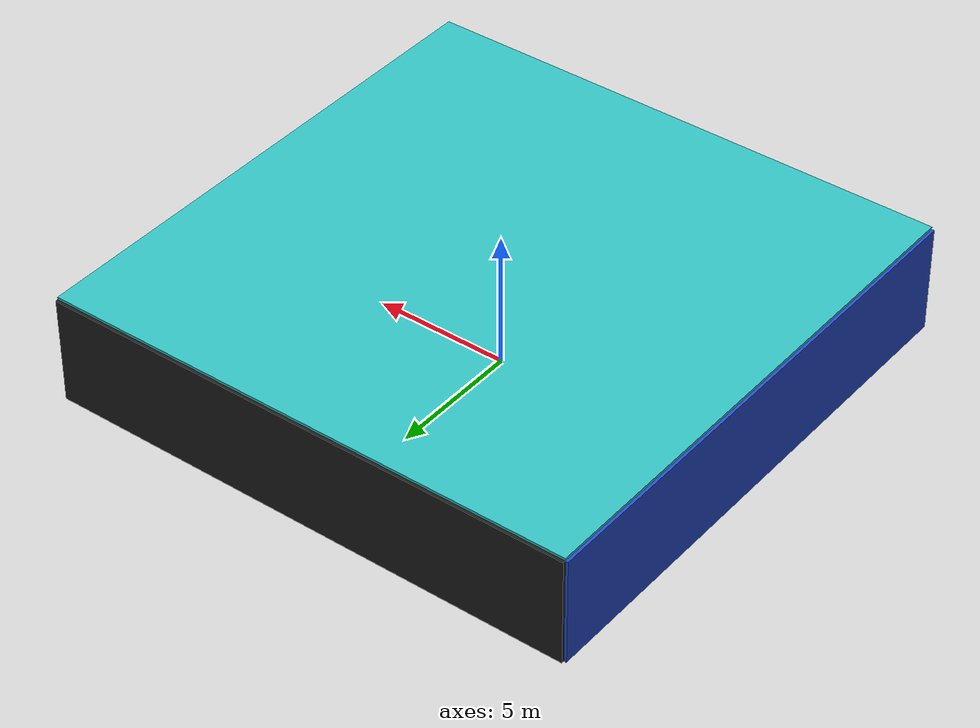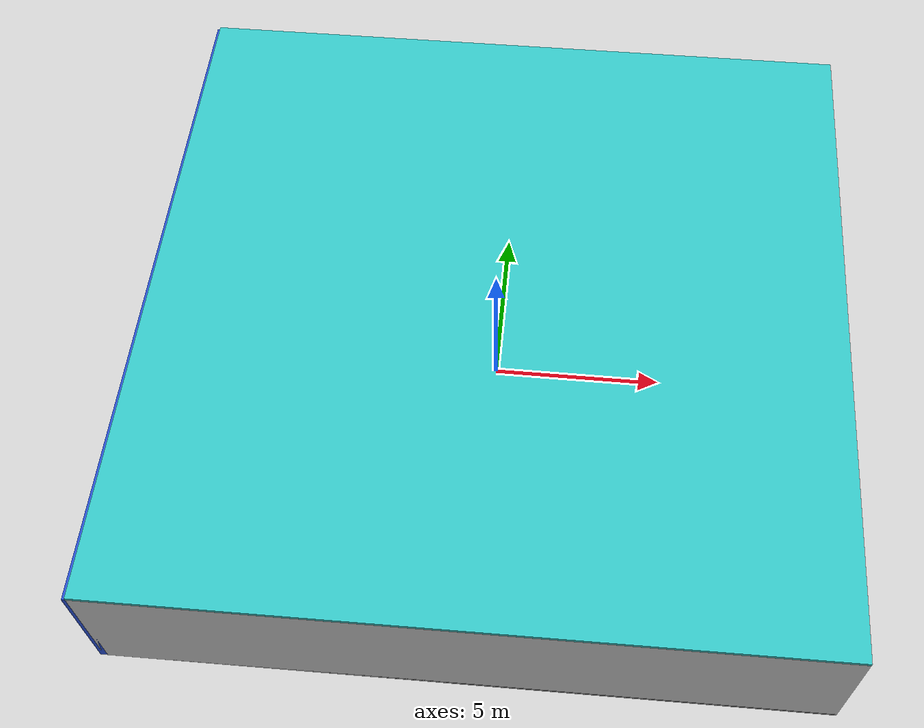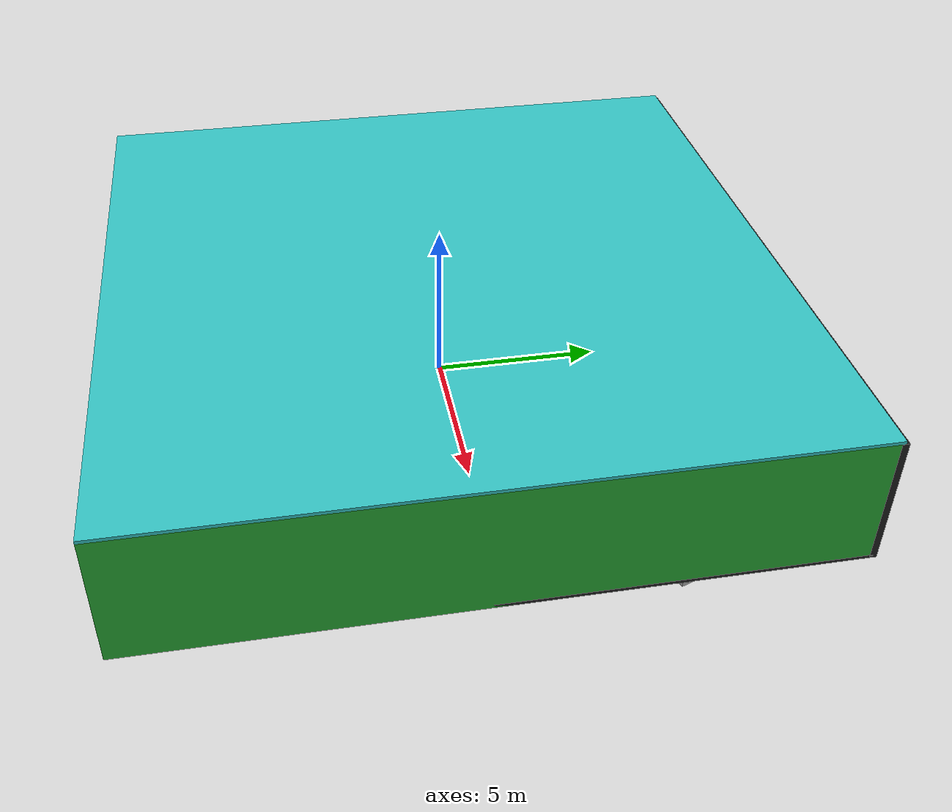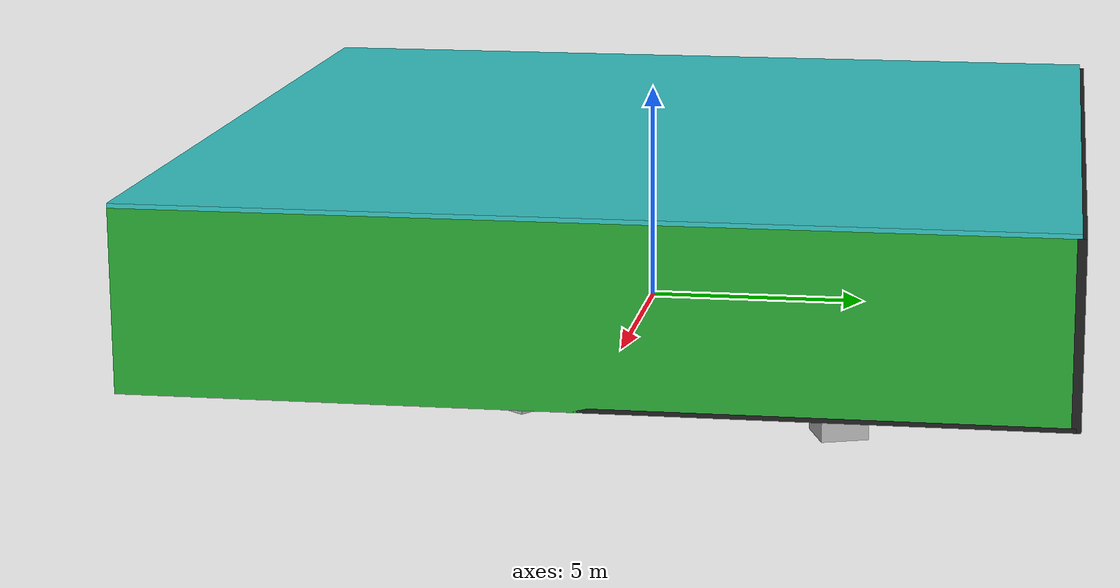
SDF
<sdf version="1.4">
 <world name="default">
  <physics type="ode">
   <max_step_size>0.001</max_step_size>
   <real_time_factor>1</real_time_factor>
   <real_time_update_rate>1000</real_time_update_rate>
   <gravity>0 0 -9.8</gravity>
  </physics>
  <scene><ambient>0.4 0.4 0.4 1</ambient><background>0.7 0.7 0.7 1</background><shadows>1</shadows></scene>
  <model name="Surrounding">
   <static>1</static>
   <link name="Ceiling">
    <collision name="Ceiling_Collision"><geometry><box><size>20 20 0.1</size></box></geometry></collision>
    <visual name="Ceiling_Visual">
     <geometry><box><size>20 20 0.1</size></box></geometry>
     <material>
      <script><uri>file://media/materials/scripts/gazebo.material</uri><name>Gazebo/TurquoiseGlow</name></script>
     </material>
    </visual>
    <pose>0 0 4.05 0 0 0</pose>
   </link>
   <link name="Wall_South">
    <collision name="Wall_South_Collision">
     <geometry><box><size>20 0 4</size></box></geometry>
     <pose>0 0 2 0 -0 0</pose>
    </collision>
    <visual name="Wall_South_Visual">
     <pose>0 0 2 0 -0 0</pose>
     <geometry><box><size>20 0 4</size></box></geometry>
     <material>
      <script><uri>file://media/materials/scripts/gazebo.material</uri><name>Gazebo/Pioneer2Body</name></script>
     </material>
    </visual>
    <velocity_decay><linear>0</linear><angular>0</angular></velocity_decay>
    <pose>0 -10 0 0 -0 0</pose>
   </link>
   <link name="Wall_East">
    <collision name="Wall_21_Collision">
     <geometry><box><size>20 0 4</size></box></geometry>
     <pose>0 0 2 0 -0 0</pose>
    </collision>
    <visual name="Wall_21_Visual">
     <pose>0 0 2 0 -0 0</pose>
     <geometry><box><size>20 0 4</size></box></geometry>
     <material>
      <script><uri>file://media/materials/scripts/gazebo.material</uri><name>Gazebo/GreenGlow</name></script>
     </material>
    </visual>
    <velocity_decay><linear>0</linear><angular>0</angular></velocity_decay>
    <pose>10 0 0 0 -0 1.5708</pose>
   </link>
   <link name="Wall_North">
    <collision name="Wall_22_Collision">
     <geometry><box><size>20 0.2 4</size></box></geometry>
     <pose>0 0 2 0 -0 0</pose>
    </collision>
    <visual name="Wall_22_Visual">
     <pose>0 0 2 0 -0 0</pose>
     <geometry><box><size>20 0.2 4</size></box></geometry>
     <material>
      <script><uri>file://media/materials/scripts/gazebo.material</uri><name>Gazebo/FlatBlack</name></script>
     </material>
    </visual>
    <velocity_decay><linear>0</linear><angular>0</angular></velocity_decay>
    <pose>0 10 0 0 -0 0</pose>
   </link>
   <link name="Wall_West">
    <collision name="Wall_23_Collision">
     <geometry><box><size>20 0.2 4</size></box></geometry>
     <pose>0 0 2 0 -0 0</pose>
    </collision>
    <visual name="Wall_23_Visual">
     <pose>0 0 2 0 -0 0</pose>
     <geometry><box><size>20 0.2 4</size></box></geometry>
     <material>
      <script><uri>file://media/materials/scripts/gazebo.material</uri><name>Gazebo/Blue</name></script>
     </material>
    </visual>
    <velocity_decay><linear>0</linear><angular>0</angular></velocity_decay>
    <pose>-10 0 0 0 0 -1.5708</pose>
   </link>
   <link name="Ground_link">
    <collision name="collision">
     <pose>0 0 .05 0 -0 0</pose>
     <geometry><box><size>20 20 0.1</size></box></geometry>
    </collision>
    <visual name="visual">
     <pose>0 0 .05 0 -0 0</pose>
     <geometry><box><size>20 20 0.1</size></box></geometry>
     <material>
      <script><uri>file://media/materials/scripts/gazebo.material</uri><name>Gazebo/Black</name></script>
     </material>
    </visual>
   </link>
   <static>1</static>
  </model>
  <spherical_coordinates>
   <surface_model>EARTH_WGS84</surface_model>
   <latitude_deg>0</latitude_deg>
   <longitude_deg>0</longitude_deg>
   <elevation>0</elevation>
   <heading_deg>0</heading_deg>
  </spherical_coordinates>
  <light name="lightball_0" type="diffuse">
   <diffuse>0.8 0.8 0.8 1</diffuse>
   <specular>0.2 0.2 0.2 1</specular>
   <attenuation>
    <range>100</range>
    <constant>0.7</constant>
    <linear>0.01</linear>
    <quadratic>0.001</quadratic>
   </attenuation>
   <direction>-0.5 0.1 -0.9</direction>
   <pose>-9.27826388219 -2.30661412476 1.85860357772 0 0 0</pose>
  </light>
  <light name="lightball_1" type="diffuse">
   <diffuse>0.8 0.8 0.8 1</diffuse>
   <specular>0.2 0.2 0.2 1</specular>
   <attenuation>
    <range>100</range>
    <constant>0.7</constant>
    <linear>0.01</linear>
    <quadratic>0.001</quadratic>
   </attenuation>
   <direction>-0.5 0.1 -0.9</direction>
   <pose>8.27498249483 -7.28293985545 1.74819613998 0 0 0</pose>
  </light>
  <light name="lightball_2" type="diffuse">
   <diffuse>0.8 0.8 0.8 1</diffuse>
   <specular>0.2 0.2 0.2 1</specular>
   <attenuation>
    <range>100</range>
    <constant>0.7</constant>
    <linear>0.01</linear>
    <quadratic>0.001</quadratic>
   </attenuation>
   <direction>-0.5 0.1 -0.9</direction>
   <pose>8.41893608103 7.58911993123 0.667571439905 0 0 0</pose>
  </light>
  <light name="lightball_3" type="diffuse">
   <diffuse>0.8 0.8 0.8 1</diffuse>
   <specular>0.2 0.2 0.2 1</specular>
   <attenuation>
    <range>100</range>
    <constant>0.7</constant>
    <linear>0.01</linear>
    <quadratic>0.001</quadratic>
   </attenuation>
   <direction>-0.5 0.1 -0.9</direction>
   <pose>5.83991778918 7.86914324487 1.5054154459 0 0 0</pose>
  </light>
  <light name="lightball_4" type="diffuse">
   <diffuse>0.8 0.8 0.8 1</diffuse>
   <specular>0.2 0.2 0.2 1</specular>
   <attenuation>
    <range>100</range>
    <constant>0.7</constant>
    <linear>0.01</linear>
    <quadratic>0.001</quadratic>
   </attenuation>
   <direction>-0.5 0.1 -0.9</direction>
   <pose>0.223206178356 5.08393975409 1.78788424872 0 0 0</pose>
  </light>
  <light name="lightball_5" type="diffuse">
   <diffuse>0.8 0.8 0.8 1</diffuse>
   <specular>0.2 0.2 0.2 1</specular>
   <attenuation>
    <range>100</range>
    <constant>0.7</constant>
    <linear>0.01</linear>
    <quadratic>0.001</quadratic>
   </attenuation>
   <direction>-0.5 0.1 -0.9</direction>
   <pose>-0.152687954597 -8.5784789445 3.79752606394 0 0 0</pose>
  </light>
  <light name="lightball_6" type="diffuse">
   <diffuse>0.8 0.8 0.8 1</diffuse>
   <specular>0.2 0.2 0.2 1</specular>
   <attenuation>
    <range>100</range>
    <constant>0.7</constant>
    <linear>0.01</linear>
    <quadratic>0.001</quadratic>
   </attenuation>
   <direction>-0.5 0.1 -0.9</direction>
   <pose>-9.24066200256 6.34152659951 1.32503849117 0 0 0</pose>
  </light>
  <light name="lightball_7" type="diffuse">
   <diffuse>0.8 0.8 0.8 1</diffuse>
   <specular>0.2 0.2 0.2 1</specular>
   <attenuation>
    <range>100</range>
    <constant>0.7</constant>
    <linear>0.01</linear>
    <quadratic>0.001</quadratic>
   </attenuation>
   <direction>-0.5 0.1 -0.9</direction>
   <pose>9.37138399437 4.89317932819 1.24491255836 0 0 0</pose>
  </light>
  <light name="lightball_8" type="diffuse">
   <diffuse>0.8 0.8 0.8 1</diffuse>
   <specular>0.2 0.2 0.2 1</specular>
   <attenuation>
    <range>100</range>
    <constant>0.7</constant>
    <linear>0.01</linear>
    <quadratic>0.001</quadratic>
   </attenuation>
   <direction>-0.5 0.1 -0.9</direction>
   <pose>8.28042322094 2.07772786888 2.6097554945 0 0 0</pose>
  </light>
  <light name="lightball_9" type="diffuse">
   <diffuse>0.8 0.8 0.8 1</diffuse>
   <specular>0.2 0.2 0.2 1</specular>
   <attenuation>
    <range>100</range>
    <constant>0.7</constant>
    <linear>0.01</linear>
    <quadratic>0.001</quadratic>
   </attenuation>
   <direction>-0.5 0.1 -0.9</direction>
   <pose>4.46948691681 3.2204732872 0.998776725291 0 0 0</pose>
  </light>
  <light name="lightball_10" type="diffuse">
   <diffuse>0.8 0.8 0.8 1</diffuse>
   <specular>0.2 0.2 0.2 1</specular>
   <attenuation>
    <range>100</range>
    <constant>0.7</constant>
    <linear>0.01</linear>
    <quadratic>0.001</quadratic>
   </attenuation>
   <direction>-0.5 0.1 -0.9</direction>
   <pose>-4.87014872126 7.45902591383 1.0083244077 0 0 0</pose>
  </light>
  <light name="lightball_11" type="diffuse">
   <diffuse>0.8 0.8 0.8 1</diffuse>
   <specular>0.2 0.2 0.2 1</specular>
   <attenuation>
    <range>100</range>
    <constant>0.7</constant>
    <linear>0.01</linear>
    <quadratic>0.001</quadratic>
   </attenuation>
   <direction>-0.5 0.1 -0.9</direction>
   <pose>2.26163864035 1.55116608943 1.17301802133 0 0 0</pose>
  </light>
  <light name="lightball_12" type="diffuse">
   <diffuse>0.8 0.8 0.8 1</diffuse>
   <specular>0.2 0.2 0.2 1</specular>
   <attenuation>
    <range>100</range>
    <constant>0.7</constant>
    <linear>0.01</linear>
    <quadratic>0.001</quadratic>
   </attenuation>
   <direction>-0.5 0.1 -0.9</direction>
   <pose>8.18286405774 -4.11158121801 2.28448869817 0 0 0</pose>
  </light>
  <include>
   <uri>model://construction_cone</uri>
   <pose>-6.71103663112 0.667925425826 0 0 0 0.9560381326</pose>
  </include>
  <include>
   <uri>model://robocup_3Dsim_goal</uri>
   <pose>-1.93450379294 -2.12811454924 0 0 0 1.0354324196</pose>
  </include>
  <include>
   <uri>model://robocup_3Dsim_goal</uri>
   <pose>2.5356096378 0.788995995707 0 0 0 1.99020098126</pose>
  </include>
  <include><uri>model://table</uri><pose>5.22542228778 5.65659331694 0 0 0 0.24434335525</pose></include>
  <include>
   <uri>model://textured_shapes</uri>
   <pose>6.73359008377 -0.75353013117 0 0 0 0.924343993902</pose>
  </include>
  <include>
   <uri>model://textured_shapes</uri>
   <pose>7.66298453353 4.66792367682 0 0 0 1.91156863204</pose>
  </include>
 </world>
</sdf>

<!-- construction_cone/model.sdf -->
<sdf version="1.5">
  <model name="Construction Cone">
    <link name="link">
      <collision name="collision">
        <geometry>
          <mesh>
            <scale>10 10 10</scale>
            <uri>file://isr-testbed/construction_cone/meshes/construction_cone.dae</uri>
          </mesh>
        </geometry>
      </collision>
      <visual name="visual">
        <geometry>
          <mesh>
            <scale>10 10 10</scale>
            <uri>file://isr-testbed/construction_cone/meshes/construction_cone.dae</uri>
          </mesh>
        </geometry>
      </visual>
    </link>
  </model>
</sdf>

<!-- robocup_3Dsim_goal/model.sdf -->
<sdf version="1.5">
  <model name="robocup_3d_goal">
    <static>true</static>
    <link name="left_post">
      <pose>0 1.05 0.45 0 0 0</pose>
      <collision name="collision">
        <geometry>
          <cylinder>
            <radius>0.05</radius>
            <length>0.9</length>
          </cylinder>
        </geometry>
      </collision>
      <visual name="visual">
        <geometry>
          <cylinder>
            <radius>0.05</radius>
            <length>0.9</length>
          </cylinder>
        </geometry>
        <material>
          <script>
            <uri>file://media/materials/scripts/gazebo.material</uri>
            <name>Gazebo/ZincYellow</name>
          </script>
        </material>
      </visual>
    </link>
    <link name="left_support_horiz_lower">
      <pose>0.30 1.05 0.01 0 0 0</pose>
      <collision name="collision">
        <geometry>
          <box>
            <size>0.50 0.02 0.02</size>
          </box>
        </geometry>
      </collision>
      <visual name="visual">
        <geometry>
          <box>
            <size>0.50 0.02 0.02</size>
          </box>
        </geometry>
        <material>
          <script>
            <uri>file://media/materials/scripts/gazebo.material</uri>
            <name>Gazebo/White</name>
          </script>
        </material>
      </visual>
    </link>
    <link name="left_support_horiz_upper">
      <pose>0.30 1.05 0.79 0 0 0</pose>
      <collision name="collision">
        <geometry>
          <box>
            <size>0.50 0.02 0.02</size>
          </box>
        </geometry>
      </collision>
      <visual name="visual">
        <geometry>
          <box>
            <size>0.50 0.02 0.02</size>
          </box>
        </geometry>
        <material>
          <script>
            <uri>file://media/materials/scripts/gazebo.material</uri>
            <name>Gazebo/White</name>
          </script>
        </material>
      </visual>
    </link>
    <link name="left_support_vertical">
      <pose>0.56 1.05 0.4 0 1.5708 0</pose>
      <collision name="collision">
        <geometry>
          <box>
            <size>0.80 0.02 0.02</size>
          </box>
        </geometry>
      </collision>
      <visual name="visual">
        <geometry>
          <box>
            <size>0.80 0.02 0.02</size>
          </box>
        </geometry>
        <material>
          <script>
            <uri>file://media/materials/scripts/gazebo.material</uri>
            <name>Gazebo/White</name>
          </script>
        </material>
      </visual>
    </link>
    <link name="right_support_horiz_lower">
      <pose>0.30 -1.05 0.01 0 0 0</pose>
      <collision name="collision">
        <geometry>
          <box>
            <size>0.50 0.02 0.02</size>
          </box>
        </geometry>
      </collision>
      <visual name="visual">
        <geometry>
          <box>
            <size>0.50 0.02 0.02</size>
          </box>
        </geometry>
        <material>
          <script>
            <uri>file://media/materials/scripts/gazebo.material</uri>
            <name>Gazebo/White</name>
          </script>
        </material>
      </visual>
    </link>
    <link name="right_support_horiz_upper">
      <pose>0.30 -1.05 0.79 0 0 0</pose>
      <collision name="collision">
        <geometry>
          <box>
            <size>0.50 0.02 0.02</size>
          </box>
        </geometry>
      </collision>
      <visual name="visual">
        <geometry>
          <box>
            <size>0.50 0.02 0.02</size>
          </box>
        </geometry>
        <material>
          <script>
            <uri>file://media/materials/scripts/gazebo.material</uri>
            <name>Gazebo/White</name>
          </script>
        </material>
      </visual>
    </link>
    <link name="right_support_vertical">
      <pose>0.56 -1.05 0.4 0 1.5708 0</pose>
      <collision name="collision">
        <geometry>
          <box>
            <size>0.80 0.02 0.02</size>
          </box>
        </geometry>
      </collision>
      <visual name="visual">
        <geometry>
          <box>
            <size>0.80 0.02 0.02</size>
          </box>
        </geometry>
        <material>
          <script>
            <uri>file://media/materials/scripts/gazebo.material</uri>
            <name>Gazebo/White</name>
          </script>
        </material>
      </visual>
    </link>
    <link name="center_support_horiz_lower">
      <pose>0.56 0 0.01 0 1.5708 0</pose>
      <collision name="collision">
        <geometry>
          <box>
            <size>0.02 2.08 0.02</size>
          </box>
        </geometry>
      </collision>
      <visual name="visual">
        <geometry>
          <box>
            <size>0.02 2.08 0.02</size>
          </box>
        </geometry>
        <material>
          <script>
            <uri>file://media/materials/scripts/gazebo.material</uri>
            <name>Gazebo/White</name>
          </script>
        </material>
      </visual>
    </link>
    <link name="center_support_horiz_upper">
      <pose>0.56 0 0.79 0 1.5708 0</pose>
      <collision name="collision">
        <geometry>
          <box>
            <size>0.02 2.08 0.02</size>
          </box>
        </geometry>
      </collision>
      <visual name="visual">
        <geometry>
          <box>
            <size>0.02 2.08 0.02</size>
          </box>
        </geometry>
        <material>
          <script>
            <uri>file://media/materials/scripts/gazebo.material</uri>
            <name>Gazebo/White</name>
          </script>
        </material>
      </visual>
    </link>
    <link name="right_post">
      <pose>0 -1.05 0.45 0 0 0</pose>
      <collision name="collision">
        <geometry>
          <cylinder>
            <radius>0.05</radius>
            <length>0.9</length>
          </cylinder>
        </geometry>
      </collision>
      <visual name="visual">
        <geometry>
          <cylinder>
            <radius>0.05</radius>
            <length>0.9</length>
          </cylinder>
        </geometry>
        <material>
          <script>
            <uri>file://media/materials/scripts/gazebo.material</uri>
            <name>Gazebo/ZincYellow</name>
          </script>
        </material>
      </visual>
    </link>
    <link name="crossbar">
      <pose>0 0 0.85 1.57 1.57 0</pose>
      <collision name="collision">
        <geometry>
          <cylinder>
            <radius>0.05</radius>
            <length>2.0</length>
          </cylinder>
        </geometry>
      </collision>
      <visual name="visual">
        <geometry>
          <cylinder>
            <radius>0.05</radius>
            <length>2.0</length>
          </cylinder>
        </geometry>
        <material>
          <script>
            <uri>file://media/materials/scripts/gazebo.material</uri>
            <name>Gazebo/ZincYellow</name>
          </script>
        </material>
      </visual>
    </link>
    <link name="center_net">
      <pose>0.56 0 0.40 0 0 0</pose>
      <collision name="collision">
        <geometry>
          <box>
            <size>0.01 2.1 0.80</size>
          </box>
        </geometry>
      </collision>
      <visual name="visual">
        <geometry>
          <box>
            <size>0.01 2.1 0.80</size>
          </box>
        </geometry>
        <material>
          <script>
            <uri>model://../model_source/models/robocup09_spl_field/materials/scripts/</uri>
            <uri>model://../model_source/models/robocup09_spl_field/materials/textures/</uri>
            <name>RoboCup/Net</name>
          </script>
        </material>
      </visual>
    </link>
    <link name="left_net">
      <pose>0.30 1.05 0.40 0 0 0</pose>
      <collision name="collision">
        <geometry>
          <box>
            <size>0.50 0.01 0.76</size>
          </box>
        </geometry>
      </collision>
      <visual name="visual">
        <geometry>
          <box>
            <size>0.50 0.01 0.76</size>
          </box>
        </geometry>
        <material>
          <script>
            <uri>model://../model_source/models/robocup09_spl_field/materials/scripts/</uri>
            <uri>model://../model_source/models/robocup09_spl_field/materials/textures/</uri>
            <name>RoboCup/Net</name>
          </script>
        </material>
      </visual>
    </link>
    <link name="right_net">
      <pose>0.30 -1.05 0.40 0 0 0</pose>
      <collision name="collision">
        <geometry>
          <box>
            <size>0.50 0.01 0.76</size>
          </box>
        </geometry>
      </collision>
      <visual name="visual">
        <geometry>
          <box>
            <size>0.50 0.01 0.76</size>
          </box>
        </geometry>
        <material>
          <script>
            <uri>model://../model_source/models/robocup09_spl_field/materials/scripts/</uri>
            <uri>model://../model_source/models/robocup09_spl_field/materials/textures/</uri>
            <name>RoboCup/Net</name>
          </script>
        </material>
      </visual>
    </link>
  </model>
</sdf>

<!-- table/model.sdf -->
<sdf version="1.5">
  <model name="table">
    <static>true</static>
    <link name="link">
      <collision name="surface">
        <pose>0 0 1.0 0 0 0</pose>
        <geometry>
          <box>
            <size>1.5 0.8 0.03</size>
          </box>
        </geometry>
        <surface>
          <friction>
            <ode>
              <mu>0.6</mu>
              <mu2>0.6</mu2>
            </ode>
          </friction>
        </surface>
      </collision>
      <visual name="visual1">
        <pose>0 0 1.0 0 0 0</pose>
        <geometry>
          <box>
            <size>1.5 0.8 0.03</size>
          </box>
        </geometry>
        <material>
          <script>
            <uri>model://media/materials/scripts/gazebo.material</uri>
            <name>Gazebo/Wood</name>
          </script>
        </material>
      </visual>
      <collision name="front_left_leg">
        <pose>0.68 0.38 0.5 0 0 0</pose>
        <geometry>
          <cylinder>
            <radius>0.02</radius>
            <length>1.0</length>
          </cylinder>
        </geometry>
      </collision>
      <visual name="front_left_leg">
        <pose>0.68 0.38 0.5 0 0 0</pose>
        <geometry>
          <cylinder>
            <radius>0.02</radius>
            <length>1.0</length>
          </cylinder>
        </geometry>
        <material>
          <script>
            <uri>model://media/materials/scripts/gazebo.material</uri>
            <name>Gazebo/Grey</name>
          </script>
        </material>
      </visual>
      <collision name="front_right_leg">
        <pose>0.68 -0.38 0.5 0 0 0</pose>
        <geometry>
          <cylinder>
            <radius>0.02</radius>
            <length>1.0</length>
          </cylinder>
        </geometry>
      </collision>
      <visual name="front_right_leg">
        <pose>0.68 -0.38 0.5 0 0 0</pose>
        <geometry>
          <cylinder>
            <radius>0.02</radius>
            <length>1.0</length>
          </cylinder>
        </geometry>
        <material>
          <script>
            <uri>model://media/materials/scripts/gazebo.material</uri>
            <name>Gazebo/Grey</name>
          </script>
        </material>
      </visual>
      <collision name="back_right_leg">
        <pose>-0.68 -0.38 0.5 0 0 0</pose>
        <geometry>
          <cylinder>
            <radius>0.02</radius>
            <length>1.0</length>
          </cylinder>
        </geometry>
      </collision>
      <visual name="back_right_leg">
        <pose>-0.68 -0.38 0.5 0 0 0</pose>
        <geometry>
          <cylinder>
            <radius>0.02</radius>
            <length>1.0</length>
          </cylinder>
        </geometry>
        <material>
          <script>
            <uri>model://media/materials/scripts/gazebo.material</uri>
            <name>Gazebo/Grey</name>
          </script>
        </material>
      </visual>
      <collision name="back_left_leg">
        <pose>-0.68 0.38 0.5 0 0 0</pose>
        <geometry>
          <cylinder>
            <radius>0.02</radius>
            <length>1.0</length>
          </cylinder>
        </geometry>
      </collision>
      <visual name="back_left_leg">
        <pose>-0.68 0.38 0.5 0 0 0</pose>
        <geometry>
          <cylinder>
            <radius>0.02</radius>
            <length>1.0</length>
          </cylinder>
        </geometry>
        <material>
          <script>
            <uri>model://media/materials/scripts/gazebo.material</uri>
            <name>Gazebo/Grey</name>
          </script>
        </material>
      </visual>
    </link>
  </model>
</sdf>

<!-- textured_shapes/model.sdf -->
<sdf version="1.6">
  <model name="textured_shapes">
    <pose>0 0 0.5 0 0 0</pose>
    <link name="box">
      <pose>0 -1.5 0 0 0 0</pose>
      <collision name="collision">
        <geometry>
          <box>
            <size>1 1 1</size>
          </box>
        </geometry>
      </collision>
      <visual name="visual">
        <geometry>
          <box>
            <size>1 1 1</size>
          </box>
        </geometry>
        <material>
          <script>
            <uri>model://../model_source/models/textured_shapes/materials/scripts</uri>
            <uri>model://../model_source/models/textured_shapes/materials/textures</uri>
            <name>TexturedShape/Squares</name>
          </script>
        </material>
      </visual>
    </link>
    <link name="sphere">
      <collision name="collision">
        <geometry>
          <sphere>
            <radius>0.5</radius>
          </sphere>
        </geometry>
      </collision>
      <visual name="visual">
        <geometry>
          <sphere>
            <radius>0.5</radius>
          </sphere>
        </geometry>
        <material>
          <script>
            <uri>model://../model_source/models/textured_shapes/materials/scripts</uri>
            <uri>model://../model_source/models/textured_shapes/materials/textures</uri>
            <name>TexturedShape/Squares</name>
          </script>
        </material>
      </visual>
    </link>
    <link name="cylinder">
      <pose>0 1.5 0 0 0 0</pose>
      <collision name="collision">
        <geometry>
          <cylinder>
            <radius>0.5</radius>
            <length>1</length>
          </cylinder>
        </geometry>
      </collision>
      <visual name="visual">
        <geometry>
          <cylinder>
            <radius>0.5</radius>
            <length>1</length>
          </cylinder>
        </geometry>
        <material>
          <script>
            <uri>model://../model_source/models/textured_shapes/materials/scripts</uri>
            <uri>model://../model_source/models/textured_shapes/materials/textures</uri>
            <name>TexturedShape/Squares</name>
          </script>
        </material>
      </visual>
    </link>
  </model>
</sdf>
